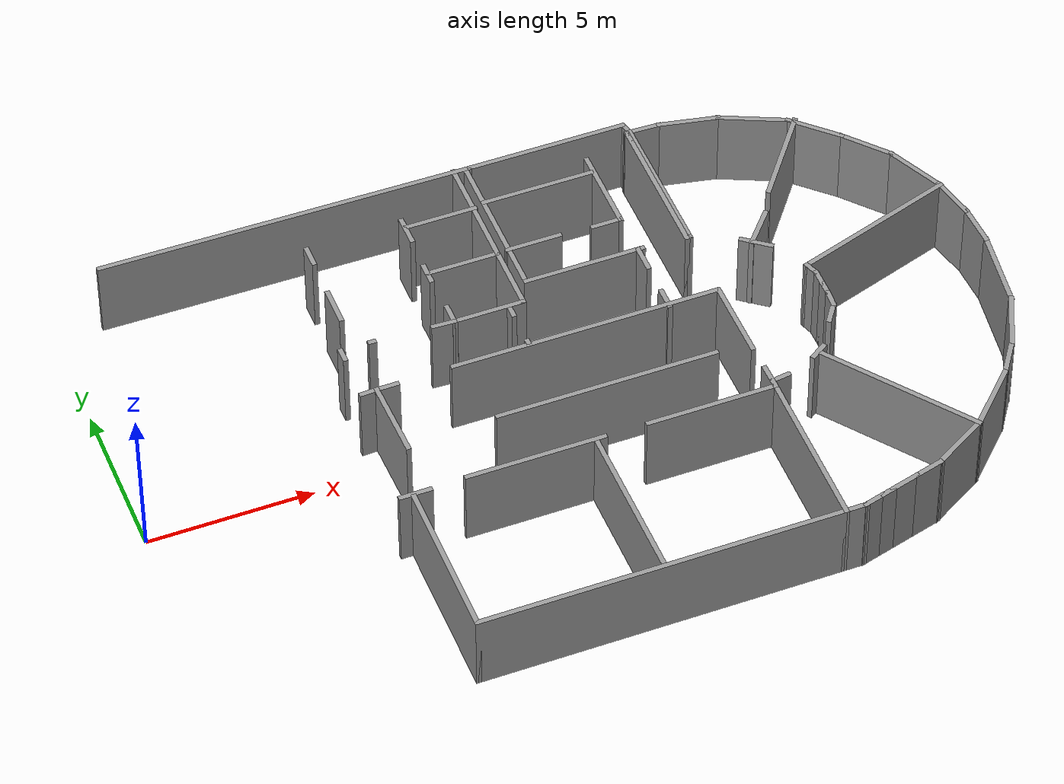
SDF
<sdf version="1.7">
 <model name="5OG_waende">
  <pose>-0.119199 0.062198 0 0 -0 0</pose>
  <link name="Wall_10">
   <collision name="Wall_10_Collision">
    <geometry><box><size>2.25 0.15 2.5</size></box></geometry>
    <pose>0 0 1.25 0 -0 0</pose>
   </collision>
   <visual name="Wall_10_Visual">
    <pose>0 0 1.25 0 -0 0</pose>
    <geometry><box><size>2.25 0.15 2.5</size></box></geometry>
    <material>
     <script><uri>file://media/materials/scripts/gazebo.material</uri><name>Gazebo/Grey</name></script>
     <ambient>1 1 1 1</ambient>
    </material>
    <meta><layer>0</layer></meta>
   </visual>
   <pose>23.3119 -5.75931 0 0 -0 0.785398</pose>
  </link>
  <link name="Wall_11">
   <collision name="Wall_11_Collision">
    <geometry><box><size>1.33085 0.15 2.5</size></box></geometry>
    <pose>0 0 1.25 0 -0 0</pose>
   </collision>
   <visual name="Wall_11_Visual">
    <pose>0 0 1.25 0 -0 0</pose>
    <geometry><box><size>1.33085 0.15 2.5</size></box></geometry>
    <material>
     <script><uri>file://media/materials/scripts/gazebo.material</uri><name>Gazebo/Grey</name></script>
     <ambient>1 1 1 1</ambient>
    </material>
    <meta><layer>0</layer></meta>
   </visual>
   <pose>24.3861 -4.52841 0 0 -0 0.974205</pose>
  </link>
  <link name="Wall_12">
   <collision name="Wall_12_Collision">
    <geometry><box><size>1.84074 0.15 2.5</size></box></geometry>
    <pose>0 0 1.25 0 -0 0</pose>
   </collision>
   <visual name="Wall_12_Visual">
    <pose>0 0 1.25 0 -0 0</pose>
    <geometry><box><size>1.84074 0.15 2.5</size></box></geometry>
    <material>
     <script><uri>file://media/materials/scripts/gazebo.material</uri><name>Gazebo/Grey</name></script>
     <ambient>1 1 1 1</ambient>
    </material>
    <meta><layer>0</layer></meta>
   </visual>
   <pose>25.0636 -3.26858 0 0 -0 1.14938</pose>
  </link>
  <link name="Wall_13">
   <collision name="Wall_13_Collision">
    <geometry><box><size>2.5652 0.15 2.5</size></box></geometry>
    <pose>0 0 1.25 0 -0 0</pose>
   </collision>
   <visual name="Wall_13_Visual">
    <pose>0 0 1.25 0 -0 0</pose>
    <geometry><box><size>2.5652 0.15 2.5</size></box></geometry>
    <material>
     <script><uri>file://media/materials/scripts/gazebo.material</uri><name>Gazebo/Grey</name></script>
     <ambient>1 1 1 1</ambient>
    </material>
    <meta><layer>0</layer></meta>
   </visual>
   <pose>25.569 -1.30016 0 0 -0 1.43824</pose>
  </link>
  <link name="Wall_14">
   <collision name="Wall_14_Collision">
    <geometry><box><size>1.37477 0.15 2.5</size></box></geometry>
    <pose>0 0 1.25 0 -0 0</pose>
   </collision>
   <visual name="Wall_14_Visual">
    <pose>0 0 1.25 0 -0 0</pose>
    <geometry><box><size>1.37477 0.15 2.5</size></box></geometry>
    <material>
     <script><uri>file://media/materials/scripts/gazebo.material</uri><name>Gazebo/Grey</name></script>
     <ambient>1 1 1 1</ambient>
    </material>
    <meta><layer>0</layer></meta>
   </visual>
   <pose>25.702 0.508653 0 0 -0 1.61425</pose>
  </link>
  <link name="Wall_15">
   <collision name="Wall_15_Collision">
    <geometry><box><size>1.48585 0.15 2.5</size></box></geometry>
    <pose>0 0 1.25 0 -0 0</pose>
   </collision>
   <visual name="Wall_15_Visual">
    <pose>0 0 1.25 0 -0 0</pose>
    <geometry><box><size>1.48585 0.15 2.5</size></box></geometry>
    <material>
     <script><uri>file://media/materials/scripts/gazebo.material</uri><name>Gazebo/Grey</name></script>
     <ambient>1 1 1 1</ambient>
    </material>
    <meta><layer>0</layer></meta>
   </visual>
   <pose>25.5291 1.77216 0 0 -0 1.79163</pose>
  </link>
  <link name="Wall_159">
   <collision name="Wall_159_Collision">
    <geometry><box><size>5 0.15 2.5</size></box></geometry>
    <pose>0 0 1.25 0 -0 0</pose>
   </collision>
   <visual name="Wall_159_Visual">
    <pose>0 0 1.25 0 -0 0</pose>
    <geometry><box><size>5 0.15 2.5</size></box></geometry>
    <material>
     <script><uri>file://media/materials/scripts/gazebo.material</uri><name>Gazebo/Grey</name></script>
     <ambient>1 1 1 1</ambient>
    </material>
    <meta><layer>0</layer></meta>
   </visual>
   <pose>6.95757 -5.68764 0 0 -0 1.5708</pose>
  </link>
  <link name="Wall_161">
   <collision name="Wall_161_Collision">
    <geometry><box><size>1 0.15 2.5</size></box></geometry>
    <pose>0 0 1.25 0 -0 0</pose>
   </collision>
   <visual name="Wall_161_Visual">
    <pose>0 0 1.25 0 -0 0</pose>
    <geometry><box><size>1 0.15 2.5</size></box></geometry>
    <material>
     <script><uri>file://media/materials/scripts/gazebo.material</uri><name>Gazebo/Grey</name></script>
     <ambient>1 1 1 1</ambient>
    </material>
    <meta><layer>0</layer></meta>
   </visual>
   <pose>7.02951 -3.18077 0 0 -0 0</pose>
  </link>
  <link name="Wall_169">
   <collision name="Wall_169_Collision">
    <geometry><box><size>4.25 0.15 2.5</size></box></geometry>
    <pose>0 0 1.25 0 -0 0</pose>
   </collision>
   <visual name="Wall_169_Visual">
    <pose>0 0 1.25 0 -0 0</pose>
    <geometry><box><size>4.25 0.15 2.5</size></box></geometry>
    <material>
     <script><uri>file://media/materials/scripts/gazebo.material</uri><name>Gazebo/Grey</name></script>
     <ambient>1 1 1 1</ambient>
    </material>
    <meta><layer>0</layer></meta>
   </visual>
   <pose>10.6164 -3.13514 0 0 -0 0</pose>
  </link>
  <link name="Wall_17">
   <collision name="Wall_17_Collision">
    <geometry><box><size>1.97402 0.15 2.5</size></box></geometry>
    <pose>0 0 1.25 0 -0 0</pose>
   </collision>
   <visual name="Wall_17_Visual">
    <pose>0 0 1.25 0 -0 0</pose>
    <geometry><box><size>1.97402 0.15 2.5</size></box></geometry>
    <material>
     <script><uri>file://media/materials/scripts/gazebo.material</uri><name>Gazebo/Grey</name></script>
     <ambient>1 1 1 1</ambient>
    </material>
    <meta><layer>0</layer></meta>
   </visual>
   <pose>24.9959 3.24973 0 0 -0 2.00893</pose>
  </link>
  <link name="Wall_172">
   <collision name="Wall_172_Collision">
    <geometry><box><size>5.06245 0.15 2.5</size></box></geometry>
    <pose>0 0 1.25 0 -0 0</pose>
   </collision>
   <visual name="Wall_172_Visual">
    <pose>0 0 1.25 0 -0 0</pose>
    <geometry><box><size>5.06245 0.15 2.5</size></box></geometry>
    <material>
     <script><uri>file://media/materials/scripts/gazebo.material</uri><name>Gazebo/Grey</name></script>
     <ambient>1 1 1 1</ambient>
    </material>
    <meta><layer>0</layer></meta>
   </visual>
   <pose>12.4143 -5.60656 0 0 -0 1.57699</pose>
  </link>
  <link name="Wall_174">
   <collision name="Wall_174_Collision">
    <geometry><box><size>4 0.15 2.5</size></box></geometry>
    <pose>0 0 1.25 0 -0 0</pose>
   </collision>
   <visual name="Wall_174_Visual">
    <pose>0 0 1.25 0 -0 0</pose>
    <geometry><box><size>4 0.15 2.5</size></box></geometry>
    <material>
     <script><uri>file://media/materials/scripts/gazebo.material</uri><name>Gazebo/Grey</name></script>
     <ambient>1 1 1 1</ambient>
    </material>
    <meta><layer>0</layer></meta>
   </visual>
   <pose>15.9058 -3.13514 0 0 -0 0</pose>
  </link>
  <link name="Wall_175">
   <collision name="Wall_175_Collision">
    <geometry><box><size>5.12755 0.15 2.5</size></box></geometry>
    <pose>0 0 1.25 0 -0 0</pose>
   </collision>
   <visual name="Wall_175_Visual">
    <pose>0 0 1.25 0 -0 0</pose>
    <geometry><box><size>5.12755 0.15 2.5</size></box></geometry>
    <material>
     <script><uri>file://media/materials/scripts/gazebo.material</uri><name>Gazebo/Grey</name></script>
     <ambient>1 1 1 1</ambient>
    </material>
    <meta><layer>0</layer></meta>
   </visual>
   <pose>17.8192 -5.62389 0 0 -0 -1.57546</pose>
  </link>
  <link name="Wall_177">
   <collision name="Wall_177_Collision">
    <geometry><box><size>0.885695 0.15 2.5</size></box></geometry>
    <pose>0 0 1.25 0 -0 0</pose>
   </collision>
   <visual name="Wall_177_Visual">
    <pose>0 0 1.25 0 -0 0</pose>
    <geometry><box><size>0.885695 0.15 2.5</size></box></geometry>
    <material>
     <script><uri>file://media/materials/scripts/gazebo.material</uri><name>Gazebo/Grey</name></script>
     <ambient>1 1 1 1</ambient>
    </material>
    <meta><layer>0</layer></meta>
   </visual>
   <pose>17.8268 -2.76732 0 0 -0 -1.56005</pose>
  </link>
  <link name="Wall_18">
   <collision name="Wall_18_Collision">
    <geometry><box><size>1.75604 0.15 2.5</size></box></geometry>
    <pose>0 0 1.25 0 -0 0</pose>
   </collision>
   <visual name="Wall_18_Visual">
    <pose>0 0 1.25 0 -0 0</pose>
    <geometry><box><size>1.75604 0.15 2.5</size></box></geometry>
    <material>
     <script><uri>file://media/materials/scripts/gazebo.material</uri><name>Gazebo/Grey</name></script>
     <ambient>1 1 1 1</ambient>
    </material>
    <meta><layer>0</layer></meta>
   </visual>
   <pose>24.083 4.68243 0 0 -0 2.28489</pose>
  </link>
  <link name="Wall_181">
   <collision name="Wall_181_Collision">
    <geometry><box><size>0.643773 0.15 2.5</size></box></geometry>
    <pose>0 0 1.25 0 -0 0</pose>
   </collision>
   <visual name="Wall_181_Visual">
    <pose>0 0 1.25 0 -0 0</pose>
    <geometry><box><size>0.643773 0.15 2.5</size></box></geometry>
    <material>
     <script><uri>file://media/materials/scripts/gazebo.material</uri><name>Gazebo/Grey</name></script>
     <ambient>1 1 1 1</ambient>
    </material>
    <meta><layer>0</layer></meta>
   </visual>
   <pose>18.094 -2.89543 0 0 -0 -3.00727</pose>
  </link>
  <link name="Wall_184">
   <collision name="Wall_184_Collision">
    <geometry><box><size>0.656191 0.15 2.5</size></box></geometry>
    <pose>0 0 1.25 0 -0 0</pose>
   </collision>
   <visual name="Wall_184_Visual">
    <pose>0 0 1.25 0 -0 0</pose>
    <geometry><box><size>0.656191 0.15 2.5</size></box></geometry>
    <material>
     <script><uri>file://media/materials/scripts/gazebo.material</uri><name>Gazebo/Grey</name></script>
     <ambient>1 1 1 1</ambient>
    </material>
    <meta><layer>0</layer></meta>
   </visual>
   <pose>19.4892 -2.36643 0 0 -0 0.580756</pose>
  </link>
  <link name="Wall_186">
   <collision name="Wall_186_Collision">
    <geometry><box><size>6.75 0.15 2.5</size></box></geometry>
    <pose>0 0 1.25 0 -0 0</pose>
   </collision>
   <visual name="Wall_186_Visual">
    <pose>0 0 1.25 0 -0 0</pose>
    <geometry><box><size>6.75 0.15 2.5</size></box></geometry>
    <material>
     <script><uri>file://media/materials/scripts/gazebo.material</uri><name>Gazebo/Grey</name></script>
     <ambient>1 1 1 1</ambient>
    </material>
    <meta><layer>0</layer></meta>
   </visual>
   <pose>13.4788 -1.34149 0 0 -0 0</pose>
  </link>
  <link name="Wall_188">
   <collision name="Wall_188_Collision">
    <geometry><box><size>2.60999 0.15 2.5</size></box></geometry>
    <pose>0 0 1.25 0 -0 0</pose>
   </collision>
   <visual name="Wall_188_Visual">
    <pose>0 0 1.25 0 -0 0</pose>
    <geometry><box><size>2.60999 0.15 2.5</size></box></geometry>
    <material>
     <script><uri>file://media/materials/scripts/gazebo.material</uri><name>Gazebo/Grey</name></script>
     <ambient>1 1 1 1</ambient>
    </material>
    <meta><layer>0</layer></meta>
   </visual>
   <pose>17.7898 -0.349615 0 0 -0 1.57617</pose>
  </link>
  <link name="Wall_189">
   <collision name="Wall_189_Collision">
    <geometry><box><size>8.25 0.15 2.5</size></box></geometry>
    <pose>0 0 1.25 0 -0 0</pose>
   </collision>
   <visual name="Wall_189_Visual">
    <pose>0 0 1.25 0 -0 0</pose>
    <geometry><box><size>8.25 0.15 2.5</size></box></geometry>
    <material>
     <script><uri>file://media/materials/scripts/gazebo.material</uri><name>Gazebo/Grey</name></script>
     <ambient>1 1 1 1</ambient>
    </material>
    <meta><layer>0</layer></meta>
   </visual>
   <pose>13.7332 0.88031 0 0 -0 3.14159</pose>
  </link>
  <link name="Wall_19">
   <collision name="Wall_19_Collision">
    <geometry><box><size>1.83802 0.15 2.5</size></box></geometry>
    <pose>0 0 1.25 0 -0 0</pose>
   </collision>
   <visual name="Wall_19_Visual">
    <pose>0 0 1.25 0 -0 0</pose>
    <geometry><box><size>1.83802 0.15 2.5</size></box></geometry>
    <material>
     <script><uri>file://media/materials/scripts/gazebo.material</uri><name>Gazebo/Grey</name></script>
     <ambient>1 1 1 1</ambient>
    </material>
    <meta><layer>0</layer></meta>
   </visual>
   <pose>22.9503 5.87587 0 0 -0 2.37314</pose>
  </link>
  <link name="Wall_191">
   <collision name="Wall_191_Collision">
    <geometry><box><size>0.75 0.15 2.5</size></box></geometry>
    <pose>0 0 1.25 0 -0 0</pose>
   </collision>
   <visual name="Wall_191_Visual">
    <pose>0 0 1.25 0 -0 0</pose>
    <geometry><box><size>0.75 0.15 2.5</size></box></geometry>
    <material>
     <script><uri>file://media/materials/scripts/gazebo.material</uri><name>Gazebo/Grey</name></script>
     <ambient>1 1 1 1</ambient>
    </material>
    <meta><layer>0</layer></meta>
   </visual>
   <pose>7.68034 0.842025 0 0 -0 0</pose>
  </link>
  <link name="Wall_197">
   <collision name="Wall_197_Collision">
    <geometry><box><size>0.75 0.15 2.5</size></box></geometry>
    <pose>0 0 1.25 0 -0 0</pose>
   </collision>
   <visual name="Wall_197_Visual">
    <pose>0 0 1.25 0 -0 0</pose>
    <geometry><box><size>0.75 0.15 2.5</size></box></geometry>
    <material>
     <script><uri>file://media/materials/scripts/gazebo.material</uri><name>Gazebo/Grey</name></script>
     <ambient>1 1 1 1</ambient>
    </material>
    <meta><layer>0</layer></meta>
   </visual>
   <pose>7.39735 6.40508 0 0 -0 -1.5708</pose>
  </link>
  <link name="Wall_199">
   <collision name="Wall_199_Collision">
    <geometry><box><size>1.25 0.15 2.5</size></box></geometry>
    <pose>0 0 1.25 0 -0 0</pose>
   </collision>
   <visual name="Wall_199_Visual">
    <pose>0 0 1.25 0 -0 0</pose>
    <geometry><box><size>1.25 0.15 2.5</size></box></geometry>
    <material>
     <script><uri>file://media/materials/scripts/gazebo.material</uri><name>Gazebo/Grey</name></script>
     <ambient>1 1 1 1</ambient>
    </material>
    <meta><layer>0</layer></meta>
   </visual>
   <pose>7.36928 4.30463 0 0 -0 -1.5708</pose>
  </link>
  <link name="Wall_20">
   <collision name="Wall_20_Collision">
    <geometry><box><size>2.19571 0.15 2.5</size></box></geometry>
    <pose>0 0 1.25 0 -0 0</pose>
   </collision>
   <visual name="Wall_20_Visual">
    <pose>0 0 1.25 0 -0 0</pose>
    <geometry><box><size>2.19571 0.15 2.5</size></box></geometry>
    <material>
     <script><uri>file://media/materials/scripts/gazebo.material</uri><name>Gazebo/Grey</name></script>
     <ambient>1 1 1 1</ambient>
    </material>
    <meta><layer>0</layer></meta>
   </visual>
   <pose>21.4129 6.88726 0 0 -0 2.71333</pose>
  </link>
  <link name="Wall_203">
   <collision name="Wall_203_Collision">
    <geometry><box><size>5.75 0.15 2.5</size></box></geometry>
    <pose>0 0 1.25 0 -0 0</pose>
   </collision>
   <visual name="Wall_203_Visual">
    <pose>0 0 1.25 0 -0 0</pose>
    <geometry><box><size>5.75 0.15 2.5</size></box></geometry>
    <material>
     <script><uri>file://media/materials/scripts/gazebo.material</uri><name>Gazebo/Grey</name></script>
     <ambient>1 1 1 1</ambient>
    </material>
    <meta><layer>0</layer></meta>
   </visual>
   <pose>12.4349 5.29292 0 0 -0 -1.5708</pose>
  </link>
  <link name="Wall_204">
   <collision name="Wall_204_Collision">
    <geometry><box><size>2.25 0.15 2.5</size></box></geometry>
    <pose>0 0 1.25 0 -0 0</pose>
   </collision>
   <visual name="Wall_204_Visual">
    <pose>0 0 1.25 0 -0 0</pose>
    <geometry><box><size>2.25 0.15 2.5</size></box></geometry>
    <material>
     <script><uri>file://media/materials/scripts/gazebo.material</uri><name>Gazebo/Grey</name></script>
     <ambient>1 1 1 1</ambient>
    </material>
    <meta><layer>0</layer></meta>
   </visual>
   <pose>11.3849 2.49292 0 0 -0 3.14159</pose>
  </link>
  <link name="Wall_205">
   <collision name="Wall_205_Collision">
    <geometry><box><size>0.75 0.15 2.5</size></box></geometry>
    <pose>0 0 1.25 0 -0 0</pose>
   </collision>
   <visual name="Wall_205_Visual">
    <pose>0 0 1.25 0 -0 0</pose>
    <geometry><box><size>0.75 0.15 2.5</size></box></geometry>
    <material>
     <script><uri>file://media/materials/scripts/gazebo.material</uri><name>Gazebo/Grey</name></script>
     <ambient>1 1 1 1</ambient>
    </material>
    <meta><layer>0</layer></meta>
   </visual>
   <pose>10.3349 2.79292 0 0 -0 1.5708</pose>
  </link>
  <link name="Wall_207">
   <collision name="Wall_207_Collision">
    <geometry><box><size>0.75 0.15 2.5</size></box></geometry>
    <pose>0 0 1.25 0 -0 0</pose>
   </collision>
   <visual name="Wall_207_Visual">
    <pose>0 0 1.25 0 -0 0</pose>
    <geometry><box><size>0.75 0.15 2.5</size></box></geometry>
    <material>
     <script><uri>file://media/materials/scripts/gazebo.material</uri><name>Gazebo/Grey</name></script>
     <ambient>1 1 1 1</ambient>
    </material>
    <meta><layer>0</layer></meta>
   </visual>
   <pose>10.2837 4.53011 0 0 -0 1.5708</pose>
  </link>
  <link name="Wall_209">
   <collision name="Wall_209_Collision">
    <geometry><box><size>2.25 0.15 2.5</size></box></geometry>
    <pose>0 0 1.25 0 -0 0</pose>
   </collision>
   <visual name="Wall_209_Visual">
    <pose>0 0 1.25 0 -0 0</pose>
    <geometry><box><size>2.25 0.15 2.5</size></box></geometry>
    <material>
     <script><uri>file://media/materials/scripts/gazebo.material</uri><name>Gazebo/Grey</name></script>
     <ambient>1 1 1 1</ambient>
    </material>
    <meta><layer>0</layer></meta>
   </visual>
   <pose>11.3569 4.53081 0 0 -0 0</pose>
  </link>
  <link name="Wall_21">
   <collision name="Wall_21_Collision">
    <geometry><box><size>1.92728 0.15 2.5</size></box></geometry>
    <pose>0 0 1.25 0 -0 0</pose>
   </collision>
   <visual name="Wall_21_Visual">
    <pose>0 0 1.25 0 -0 0</pose>
    <geometry><box><size>1.92728 0.15 2.5</size></box></geometry>
    <material>
     <script><uri>file://media/materials/scripts/gazebo.material</uri><name>Gazebo/Grey</name></script>
     <ambient>1 1 1 1</ambient>
    </material>
    <meta><layer>0</layer></meta>
   </visual>
   <pose>19.6127 7.49409 0 0 -0 2.93527</pose>
  </link>
  <link name="Wall_211">
   <collision name="Wall_211_Collision">
    <geometry><box><size>1 0.15 2.5</size></box></geometry>
    <pose>0 0 1.25 0 -0 0</pose>
   </collision>
   <visual name="Wall_211_Visual">
    <pose>0 0 1.25 0 -0 0</pose>
    <geometry><box><size>1 0.15 2.5</size></box></geometry>
    <material>
     <script><uri>file://media/materials/scripts/gazebo.material</uri><name>Gazebo/Grey</name></script>
     <ambient>1 1 1 1</ambient>
    </material>
    <meta><layer>0</layer></meta>
   </visual>
   <pose>10.33 6.34947 0 0 -0 -1.5708</pose>
  </link>
  <link name="Wall_213">
   <collision name="Wall_213_Collision">
    <geometry><box><size>2.25 0.15 2.5</size></box></geometry>
    <pose>0 0 1.25 0 -0 0</pose>
   </collision>
   <visual name="Wall_213_Visual">
    <pose>0 0 1.25 0 -0 0</pose>
    <geometry><box><size>2.25 0.15 2.5</size></box></geometry>
    <material>
     <script><uri>file://media/materials/scripts/gazebo.material</uri><name>Gazebo/Grey</name></script>
     <ambient>1 1 1 1</ambient>
    </material>
    <meta><layer>0</layer></meta>
   </visual>
   <pose>11.4263 6.47378 0 0 -0 0</pose>
  </link>
  <link name="Wall_215">
   <collision name="Wall_215_Collision">
    <geometry><box><size>0.779929 0.15 2.5</size></box></geometry>
    <pose>0 0 1.25 0 -0 0</pose>
   </collision>
   <visual name="Wall_215_Visual">
    <pose>0 0 1.25 0 -0 0</pose>
    <geometry><box><size>0.779929 0.15 2.5</size></box></geometry>
    <material>
     <script><uri>file://media/materials/scripts/gazebo.material</uri><name>Gazebo/Grey</name></script>
     <ambient>1 1 1 1</ambient>
    </material>
    <meta><layer>0</layer></meta>
   </visual>
   <pose>10.0202 2.50568 0 0 -0 -0.040529</pose>
  </link>
  <link name="Wall_217">
   <collision name="Wall_217_Collision">
    <geometry><box><size>0.75 0.15 2.5</size></box></geometry>
    <pose>0 0 1.25 0 -0 0</pose>
   </collision>
   <visual name="Wall_217_Visual">
    <pose>0 0 1.25 0 -0 0</pose>
    <geometry><box><size>0.75 0.15 2.5</size></box></geometry>
    <material>
     <script><uri>file://media/materials/scripts/gazebo.material</uri><name>Gazebo/Grey</name></script>
     <ambient>1 1 1 1</ambient>
    </material>
    <meta><layer>0</layer></meta>
   </visual>
   <pose>16.2457 1.11391 0 0 -0 -1.5708</pose>
  </link>
  <link name="Wall_219">
   <collision name="Wall_219_Collision">
    <geometry><box><size>0.915267 0.15 2.5</size></box></geometry>
    <pose>0 0 1.25 0 -0 0</pose>
   </collision>
   <visual name="Wall_219_Visual">
    <pose>0 0 1.25 0 -0 0</pose>
    <geometry><box><size>0.915267 0.15 2.5</size></box></geometry>
    <material>
     <script><uri>file://media/materials/scripts/gazebo.material</uri><name>Gazebo/Grey</name></script>
     <ambient>1 1 1 1</ambient>
    </material>
    <meta><layer>0</layer></meta>
   </visual>
   <pose>16.2544 2.81391 0 0 -0 1.5708</pose>
  </link>
  <link name="Wall_22">
   <collision name="Wall_22_Collision">
    <geometry><box><size>1.1622 0.15 2.5</size></box></geometry>
    <pose>0 0 1.25 0 -0 0</pose>
   </collision>
   <visual name="Wall_22_Visual">
    <pose>0 0 1.25 0 -0 0</pose>
    <geometry><box><size>1.1622 0.15 2.5</size></box></geometry>
    <material>
     <script><uri>file://media/materials/scripts/gazebo.material</uri><name>Gazebo/Grey</name></script>
     <ambient>1 1 1 1</ambient>
    </material>
    <meta><layer>0</layer></meta>
   </visual>
   <pose>18.2372 7.69637 0 0 -0 3.10161</pose>
  </link>
  <link name="Wall_221">
   <collision name="Wall_221_Collision">
    <geometry><box><size>0.5 0.15 2.5</size></box></geometry>
    <pose>0 0 1.25 0 -0 0</pose>
   </collision>
   <visual name="Wall_221_Visual">
    <pose>0 0 1.25 0 -0 0</pose>
    <geometry><box><size>0.5 0.15 2.5</size></box></geometry>
    <material>
     <script><uri>file://media/materials/scripts/gazebo.material</uri><name>Gazebo/Grey</name></script>
     <ambient>1 1 1 1</ambient>
    </material>
    <meta><layer>0</layer></meta>
   </visual>
   <pose>11.9849 2.28239 0 0 -0 -1.5708</pose>
  </link>
  <link name="Wall_223">
   <collision name="Wall_223_Collision">
    <geometry><box><size>0.25 0.15 2.5</size></box></geometry>
    <pose>0 0 1.25 0 -0 0</pose>
   </collision>
   <visual name="Wall_223_Visual">
    <pose>0 0 1.25 0 -0 0</pose>
    <geometry><box><size>0.25 0.15 2.5</size></box></geometry>
    <material>
     <script><uri>file://media/materials/scripts/gazebo.material</uri><name>Gazebo/Grey</name></script>
     <ambient>1 1 1 1</ambient>
    </material>
    <meta><layer>0</layer></meta>
   </visual>
   <pose>11.9849 0.972606 0 0 -0 -1.5708</pose>
  </link>
  <link name="Wall_25">
   <collision name="Wall_25_Collision">
    <geometry><box><size>4.75 0.15 2.5</size></box></geometry>
    <pose>0 0 1.25 0 -0 0</pose>
   </collision>
   <visual name="Wall_25_Visual">
    <pose>0 0 1.25 0 -0 0</pose>
    <geometry><box><size>4.75 0.15 2.5</size></box></geometry>
    <material>
     <script><uri>file://media/materials/scripts/gazebo.material</uri><name>Gazebo/Grey</name></script>
     <ambient>1 1 1 1</ambient>
    </material>
    <meta><layer>0</layer></meta>
   </visual>
   <pose>17.7315 5.4166 0 0 -0 -1.5708</pose>
  </link>
  <link name="Wall_26">
   <collision name="Wall_26_Collision">
    <geometry><box><size>0.25 0.15 2.5</size></box></geometry>
    <pose>0 0 1.25 0 -0 0</pose>
   </collision>
   <visual name="Wall_26_Visual">
    <pose>0 0 1.25 0 -0 0</pose>
    <geometry><box><size>0.25 0.15 2.5</size></box></geometry>
    <material>
     <script><uri>file://media/materials/scripts/gazebo.material</uri><name>Gazebo/Grey</name></script>
     <ambient>1 1 1 1</ambient>
    </material>
    <meta><layer>0</layer></meta>
   </visual>
   <pose>17.7815 3.1166 0 0 -0 0</pose>
  </link>
  <link name="Wall_27">
   <collision name="Wall_27_Collision">
    <geometry><box><size>4.75 0.15 2.5</size></box></geometry>
    <pose>0 0 1.25 0 -0 0</pose>
   </collision>
   <visual name="Wall_27_Visual">
    <pose>0 0 1.25 0 -0 0</pose>
    <geometry><box><size>4.75 0.15 2.5</size></box></geometry>
    <material>
     <script><uri>file://media/materials/scripts/gazebo.material</uri><name>Gazebo/Grey</name></script>
     <ambient>1 1 1 1</ambient>
    </material>
    <meta><layer>0</layer></meta>
   </visual>
   <pose>17.8315 5.4166 0 0 -0 1.5708</pose>
  </link>
  <link name="Wall_29">
   <collision name="Wall_29_Collision">
    <geometry><box><size>0.5 0.15 2.5</size></box></geometry>
    <pose>0 0 1.25 0 -0 0</pose>
   </collision>
   <visual name="Wall_29_Visual">
    <pose>0 0 1.25 0 -0 0</pose>
    <geometry><box><size>0.5 0.15 2.5</size></box></geometry>
    <material>
     <script><uri>file://media/materials/scripts/gazebo.material</uri><name>Gazebo/Grey</name></script>
     <ambient>1 1 1 1</ambient>
    </material>
    <meta><layer>0</layer></meta>
   </visual>
   <pose>17.7862 7.88563 0 0 -0 1.8326</pose>
  </link>
  <link name="Wall_3">
   <collision name="Wall_3_Collision">
    <geometry><box><size>11 0.15 2.5</size></box></geometry>
    <pose>0 0 1.25 0 -0 0</pose>
   </collision>
   <visual name="Wall_3_Visual">
    <pose>0 0 1.25 0 -0 0</pose>
    <geometry><box><size>11 0.15 2.5</size></box></geometry>
    <material>
     <script><uri>file://media/materials/scripts/gazebo.material</uri><name>Gazebo/Grey</name></script>
     <ambient>1 1 1 1</ambient>
    </material>
    <meta><layer>0</layer></meta>
   </visual>
   <pose>12.3826 -8.11264 0 0 -0 0</pose>
  </link>
  <link name="Wall_30">
   <collision name="Wall_30_Collision">
    <geometry><box><size>5 0.15 2.5</size></box></geometry>
    <pose>0 0 1.25 0 -0 0</pose>
   </collision>
   <visual name="Wall_30_Visual">
    <pose>0 0 1.25 0 -0 0</pose>
    <geometry><box><size>5 0.15 2.5</size></box></geometry>
    <material>
     <script><uri>file://media/materials/scripts/gazebo.material</uri><name>Gazebo/Grey</name></script>
     <ambient>1 1 1 1</ambient>
    </material>
    <meta><layer>0</layer></meta>
   </visual>
   <pose>15.3159 8.05467 0 0 -0 3.14159</pose>
  </link>
  <link name="Wall_31">
   <collision name="Wall_31_Collision">
    <geometry><box><size>0.25 0.15 2.5</size></box></geometry>
    <pose>0 0 1.25 0 -0 0</pose>
   </collision>
   <visual name="Wall_31_Visual">
    <pose>0 0 1.25 0 -0 0</pose>
    <geometry><box><size>0.25 0.15 2.5</size></box></geometry>
    <material>
     <script><uri>file://media/materials/scripts/gazebo.material</uri><name>Gazebo/Grey</name></script>
     <ambient>1 1 1 1</ambient>
    </material>
    <meta><layer>0</layer></meta>
   </visual>
   <pose>12.8409 8.05467 0 0 -0 3.14159</pose>
  </link>
  <link name="Wall_32">
   <collision name="Wall_32_Collision">
    <geometry><box><size>5 0.15 2.5</size></box></geometry>
    <pose>0 0 1.25 0 -0 0</pose>
   </collision>
   <visual name="Wall_32_Visual">
    <pose>0 0 1.25 0 -0 0</pose>
    <geometry><box><size>5 0.15 2.5</size></box></geometry>
    <material>
     <script><uri>file://media/materials/scripts/gazebo.material</uri><name>Gazebo/Grey</name></script>
     <ambient>1 1 1 1</ambient>
    </material>
    <meta><layer>0</layer></meta>
   </visual>
   <pose>12.7909 5.62967 0 0 -0 -1.5708</pose>
  </link>
  <link name="Wall_33">
   <collision name="Wall_33_Collision">
    <geometry><box><size>3.75 0.15 2.5</size></box></geometry>
    <pose>0 0 1.25 0 -0 0</pose>
   </collision>
   <visual name="Wall_33_Visual">
    <pose>0 0 1.25 0 -0 0</pose>
    <geometry><box><size>3.75 0.15 2.5</size></box></geometry>
    <material>
     <script><uri>file://media/materials/scripts/gazebo.material</uri><name>Gazebo/Grey</name></script>
     <ambient>1 1 1 1</ambient>
    </material>
    <meta><layer>0</layer></meta>
   </visual>
   <pose>14.5909 3.20467 0 0 -0 0</pose>
  </link>
  <link name="Wall_35">
   <collision name="Wall_35_Collision">
    <geometry><box><size>2.75032 0.15 2.5</size></box></geometry>
    <pose>0 0 1.25 0 -0 0</pose>
   </collision>
   <visual name="Wall_35_Visual">
    <pose>0 0 1.25 0 -0 0</pose>
    <geometry><box><size>2.75032 0.15 2.5</size></box></geometry>
    <material>
     <script><uri>file://media/materials/scripts/gazebo.material</uri><name>Gazebo/Grey</name></script>
     <ambient>1 1 1 1</ambient>
    </material>
    <meta><layer>0</layer></meta>
   </visual>
   <pose>16.2346 5.80976 0 0 -0 -1.5708</pose>
  </link>
  <link name="Wall_38">
   <collision name="Wall_38_Collision">
    <geometry><box><size>1.75 0.15 2.5</size></box></geometry>
    <pose>0 0 1.25 0 -0 0</pose>
   </collision>
   <visual name="Wall_38_Visual">
    <pose>0 0 1.25 0 -0 0</pose>
    <geometry><box><size>1.75 0.15 2.5</size></box></geometry>
    <material>
     <script><uri>file://media/materials/scripts/gazebo.material</uri><name>Gazebo/Grey</name></script>
     <ambient>1 1 1 1</ambient>
    </material>
    <meta><layer>0</layer></meta>
   </visual>
   <pose>13.5555 4.56106 0 0 -0 0</pose>
  </link>
  <link name="Wall_4">
   <collision name="Wall_4_Collision">
    <geometry><box><size>0.75 0.15 2.5</size></box></geometry>
    <pose>0 0 1.25 0 -0 0</pose>
   </collision>
   <visual name="Wall_4_Visual">
    <pose>0 0 1.25 0 -0 0</pose>
    <geometry><box><size>0.75 0.15 2.5</size></box></geometry>
    <material>
     <script><uri>file://media/materials/scripts/gazebo.material</uri><name>Gazebo/Grey</name></script>
     <ambient>1 1 1 1</ambient>
    </material>
    <meta><layer>0</layer></meta>
   </visual>
   <pose>18.1076 -8.11264 0 0 -0 0</pose>
  </link>
  <link name="Wall_40">
   <collision name="Wall_40_Collision">
    <geometry><box><size>1 0.15 2.5</size></box></geometry>
    <pose>0 0 1.25 0 -0 0</pose>
   </collision>
   <visual name="Wall_40_Visual">
    <pose>0 0 1.25 0 -0 0</pose>
    <geometry><box><size>1 0.15 2.5</size></box></geometry>
    <material>
     <script><uri>file://media/materials/scripts/gazebo.material</uri><name>Gazebo/Grey</name></script>
     <ambient>1 1 1 1</ambient>
    </material>
    <meta><layer>0</layer></meta>
   </visual>
   <pose>15.8096 4.50976 0 0 -0 3.14159</pose>
  </link>
  <link name="Wall_42">
   <collision name="Wall_42_Collision">
    <geometry><box><size>3.5 0.15 2.5</size></box></geometry>
    <pose>0 0 1.25 0 -0 0</pose>
   </collision>
   <visual name="Wall_42_Visual">
    <pose>0 0 1.25 0 -0 0</pose>
    <geometry><box><size>3.5 0.15 2.5</size></box></geometry>
    <material>
     <script><uri>file://media/materials/scripts/gazebo.material</uri><name>Gazebo/Grey</name></script>
     <ambient>1 1 1 1</ambient>
    </material>
    <meta><layer>0</layer></meta>
   </visual>
   <pose>14.4709 6.58384 0 0 -0 0</pose>
  </link>
  <link name="Wall_44">
   <collision name="Wall_44_Collision">
    <geometry><box><size>5.1793 0.15 2.5</size></box></geometry>
    <pose>0 0 1.25 0 -0 0</pose>
   </collision>
   <visual name="Wall_44_Visual">
    <pose>0 0 1.25 0 -0 0</pose>
    <geometry><box><size>5.1793 0.15 2.5</size></box></geometry>
    <material>
     <script><uri>file://media/materials/scripts/gazebo.material</uri><name>Gazebo/Grey</name></script>
     <ambient>1 1 1 1</ambient>
    </material>
    <meta><layer>0</layer></meta>
   </visual>
   <pose>21.0607 -4.48999 0 0 -0 2.21426</pose>
  </link>
  <link name="Wall_46">
   <collision name="Wall_46_Collision">
    <geometry><box><size>0.789659 0.15 2.5</size></box></geometry>
    <pose>0 0 1.25 0 -0 0</pose>
   </collision>
   <visual name="Wall_46_Visual">
    <pose>0 0 1.25 0 -0 0</pose>
    <geometry><box><size>0.789659 0.15 2.5</size></box></geometry>
    <material>
     <script><uri>file://media/materials/scripts/gazebo.material</uri><name>Gazebo/Grey</name></script>
     <ambient>1 1 1 1</ambient>
    </material>
    <meta><layer>0</layer></meta>
   </visual>
   <pose>20.4218 -1.12295 0 0 -0 0.965252</pose>
  </link>
  <link name="Wall_47">
   <collision name="Wall_47_Collision">
    <geometry><box><size>0.63715 0.15 2.5</size></box></geometry>
    <pose>0 0 1.25 0 -0 0</pose>
   </collision>
   <visual name="Wall_47_Visual">
    <pose>0 0 1.25 0 -0 0</pose>
    <geometry><box><size>0.63715 0.15 2.5</size></box></geometry>
    <material>
     <script><uri>file://media/materials/scripts/gazebo.material</uri><name>Gazebo/Grey</name></script>
     <ambient>1 1 1 1</ambient>
    </material>
    <meta><layer>0</layer></meta>
   </visual>
   <pose>20.6241 -0.617252 0 0 -0 1.48765</pose>
  </link>
  <link name="Wall_48">
   <collision name="Wall_48_Collision">
    <geometry><box><size>0.5141 0.15 2.5</size></box></geometry>
    <pose>0 0 1.25 0 -0 0</pose>
   </collision>
   <visual name="Wall_48_Visual">
    <pose>0 0 1.25 0 -0 0</pose>
    <geometry><box><size>0.5141 0.15 2.5</size></box></geometry>
    <material>
     <script><uri>file://media/materials/scripts/gazebo.material</uri><name>Gazebo/Grey</name></script>
     <ambient>1 1 1 1</ambient>
    </material>
    <meta><layer>0</layer></meta>
   </visual>
   <pose>20.6443 -0.192469 0 0 -0 1.5708</pose>
  </link>
  <link name="Wall_49">
   <collision name="Wall_49_Collision">
    <geometry><box><size>0.635467 0.15 2.5</size></box></geometry>
    <pose>0 0 1.25 0 -0 0</pose>
   </collision>
   <visual name="Wall_49_Visual">
    <pose>0 0 1.25 0 -0 0</pose>
    <geometry><box><size>0.635467 0.15 2.5</size></box></geometry>
    <material>
     <script><uri>file://media/materials/scripts/gazebo.material</uri><name>Gazebo/Grey</name></script>
     <ambient>1 1 1 1</ambient>
    </material>
    <meta><layer>0</layer></meta>
   </visual>
   <pose>20.6443 0.232315 0 0 -0 1.5708</pose>
  </link>
  <link name="Wall_5">
   <collision name="Wall_5_Collision">
    <geometry><box><size>0.75 0.15 2.5</size></box></geometry>
    <pose>0 0 1.25 0 -0 0</pose>
   </collision>
   <visual name="Wall_5_Visual">
    <pose>0 0 1.25 0 -0 0</pose>
    <geometry><box><size>0.75 0.15 2.5</size></box></geometry>
    <material>
     <script><uri>file://media/materials/scripts/gazebo.material</uri><name>Gazebo/Grey</name></script>
     <ambient>1 1 1 1</ambient>
    </material>
    <meta><layer>0</layer></meta>
   </visual>
   <pose>18.6973 -8.03499 0 0 -0 0.261799</pose>
  </link>
  <link name="Wall_50">
   <collision name="Wall_50_Collision">
    <geometry><box><size>0.533795 0.15 2.5</size></box></geometry>
    <pose>0 0 1.25 0 -0 0</pose>
   </collision>
   <visual name="Wall_50_Visual">
    <pose>0 0 1.25 0 -0 0</pose>
    <geometry><box><size>0.533795 0.15 2.5</size></box></geometry>
    <material>
     <script><uri>file://media/materials/scripts/gazebo.material</uri><name>Gazebo/Grey</name></script>
     <ambient>1 1 1 1</ambient>
    </material>
    <meta><layer>0</layer></meta>
   </visual>
   <pose>20.5836 0.657098 0 0 -0 1.89255</pose>
  </link>
  <link name="Wall_51">
   <collision name="Wall_51_Collision">
    <geometry><box><size>5.28085 0.15 2.5</size></box></geometry>
    <pose>0 0 1.25 0 -0 0</pose>
   </collision>
   <visual name="Wall_51_Visual">
    <pose>0 0 1.25 0 -0 0</pose>
    <geometry><box><size>5.28085 0.15 2.5</size></box></geometry>
    <material>
     <script><uri>file://media/materials/scripts/gazebo.material</uri><name>Gazebo/Grey</name></script>
     <ambient>1 1 1 1</ambient>
    </material>
    <meta><layer>0</layer></meta>
   </visual>
   <pose>22.9705 1.6078 0 0 -0 0.304296</pose>
  </link>
  <link name="Wall_53">
   <collision name="Wall_53_Collision">
    <geometry><box><size>1.03955 0.15 2.5</size></box></geometry>
    <pose>0 0 1.25 0 -0 0</pose>
   </collision>
   <visual name="Wall_53_Visual">
    <pose>0 0 1.25 0 -0 0</pose>
    <geometry><box><size>1.03955 0.15 2.5</size></box></geometry>
    <material>
     <script><uri>file://media/materials/scripts/gazebo.material</uri><name>Gazebo/Grey</name></script>
     <ambient>1 1 1 1</ambient>
    </material>
    <meta><layer>0</layer></meta>
   </visual>
   <pose>19.5245 2.2044 0 0 -0 2.48086</pose>
  </link>
  <link name="Wall_57">
   <collision name="Wall_57_Collision">
    <geometry><box><size>1.40755 0.15 2.5</size></box></geometry>
    <pose>0 0 1.25 0 -0 0</pose>
   </collision>
   <visual name="Wall_57_Visual">
    <pose>0 0 1.25 0 -0 0</pose>
    <geometry><box><size>1.40755 0.15 2.5</size></box></geometry>
    <material>
     <script><uri>file://media/materials/scripts/gazebo.material</uri><name>Gazebo/Grey</name></script>
     <ambient>1 1 1 1</ambient>
    </material>
    <meta><layer>0</layer></meta>
   </visual>
   <pose>19.831 2.73738 0 0 -0 0.854255</pose>
  </link>
  <link name="Wall_59">
   <collision name="Wall_59_Collision">
    <geometry><box><size>3.20321 0.15 2.5</size></box></geometry>
    <pose>0 0 1.25 0 -0 0</pose>
   </collision>
   <visual name="Wall_59_Visual">
    <pose>0 0 1.25 0 -0 0</pose>
    <geometry><box><size>3.20321 0.15 2.5</size></box></geometry>
    <material>
     <script><uri>file://media/materials/scripts/gazebo.material</uri><name>Gazebo/Grey</name></script>
     <ambient>1 1 1 1</ambient>
    </material>
    <meta><layer>0</layer></meta>
   </visual>
   <pose>21.6052 5.18459 0 0 -0 0.913268</pose>
  </link>
  <link name="Wall_6">
   <collision name="Wall_6_Collision">
    <geometry><box><size>0.5 0.15 2.5</size></box></geometry>
    <pose>0 0 1.25 0 -0 0</pose>
   </collision>
   <visual name="Wall_6_Visual">
    <pose>0 0 1.25 0 -0 0</pose>
    <geometry><box><size>0.5 0.15 2.5</size></box></geometry>
    <material>
     <script><uri>file://media/materials/scripts/gazebo.material</uri><name>Gazebo/Grey</name></script>
     <ambient>1 1 1 1</ambient>
    </material>
    <meta><layer>0</layer></meta>
   </visual>
   <pose>19.1562 -7.91205 0 0 -0 0.261799</pose>
  </link>
  <link name="Wall_69">
   <collision name="Wall_69_Collision">
    <geometry><box><size>11.3293 0.15 2.5</size></box></geometry>
    <pose>0 0 1.25 0 -0 0</pose>
   </collision>
   <visual name="Wall_69_Visual">
    <pose>0 0 1.25 0 -0 0</pose>
    <geometry><box><size>11.3293 0.15 2.5</size></box></geometry>
    <material>
     <script><uri>file://media/materials/scripts/gazebo.material</uri><name>Gazebo/Grey</name></script>
     <ambient>1 1 1 1</ambient>
    </material>
    <meta><layer>0</layer></meta>
   </visual>
   <pose>7.20153 8.10952 0 0 -0 -0.009813</pose>
  </link>
  <link name="Wall_7">
   <collision name="Wall_7_Collision">
    <geometry><box><size>1 0.15 2.5</size></box></geometry>
    <pose>0 0 1.25 0 -0 0</pose>
   </collision>
   <visual name="Wall_7_Visual">
    <pose>0 0 1.25 0 -0 0</pose>
    <geometry><box><size>1 0.15 2.5</size></box></geometry>
    <material>
     <script><uri>file://media/materials/scripts/gazebo.material</uri><name>Gazebo/Grey</name></script>
     <ambient>1 1 1 1</ambient>
    </material>
    <meta><layer>0</layer></meta>
   </visual>
   <pose>19.7357 -7.75676 0 0 -0 0.261799</pose>
  </link>
  <link name="Wall_8">
   <collision name="Wall_8_Collision">
    <geometry><box><size>1 0.15 2.5</size></box></geometry>
    <pose>0 0 1.25 0 -0 0</pose>
   </collision>
   <visual name="Wall_8_Visual">
    <pose>0 0 1.25 0 -0 0</pose>
    <geometry><box><size>1 0.15 2.5</size></box></geometry>
    <material>
     <script><uri>file://media/materials/scripts/gazebo.material</uri><name>Gazebo/Grey</name></script>
     <ambient>1 1 1 1</ambient>
    </material>
    <meta><layer>0</layer></meta>
   </visual>
   <pose>20.5568 -7.53677 0 0 -0 0.261799</pose>
  </link>
  <link name="Wall_85">
   <collision name="Wall_85_Collision">
    <geometry><box><size>0.25 0.15 2.5</size></box></geometry>
    <pose>0 0 1.25 0 -0 0</pose>
   </collision>
   <visual name="Wall_85_Visual">
    <pose>0 0 1.25 0 -0 0</pose>
    <geometry><box><size>0.25 0.15 2.5</size></box></geometry>
    <material>
     <script><uri>file://media/materials/scripts/gazebo.material</uri><name>Gazebo/Grey</name></script>
     <ambient>1 1 1 1</ambient>
    </material>
    <meta><layer>0</layer></meta>
   </visual>
   <pose>7.88616 2.60346 0 0 -0 0</pose>
  </link>
  <link name="Wall_87">
   <collision name="Wall_87_Collision">
    <geometry><box><size>0.5 0.15 2.5</size></box></geometry>
    <pose>0 0 1.25 0 -0 0</pose>
   </collision>
   <visual name="Wall_87_Visual">
    <pose>0 0 1.25 0 -0 0</pose>
    <geometry><box><size>0.5 0.15 2.5</size></box></geometry>
    <material>
     <script><uri>file://media/materials/scripts/gazebo.material</uri><name>Gazebo/Grey</name></script>
     <ambient>1 1 1 1</ambient>
    </material>
    <meta><layer>0</layer></meta>
   </visual>
   <pose>6.94308 2.43352 0 0 -0 -1.5708</pose>
  </link>
  <link name="Wall_9">
   <collision name="Wall_9_Collision">
    <geometry><box><size>2 0.15 2.5</size></box></geometry>
    <pose>0 0 1.25 0 -0 0</pose>
   </collision>
   <visual name="Wall_9_Visual">
    <pose>0 0 1.25 0 -0 0</pose>
    <geometry><box><size>2 0.15 2.5</size></box></geometry>
    <material>
     <script><uri>file://media/materials/scripts/gazebo.material</uri><name>Gazebo/Grey</name></script>
     <ambient>1 1 1 1</ambient>
    </material>
    <meta><layer>0</layer></meta>
   </visual>
   <pose>21.7683 -6.96427 0 0 -0 0.523599</pose>
  </link>
  <link name="Wall_97">
   <collision name="Wall_97_Collision">
    <geometry><box><size>2.51174 0.15 2.5</size></box></geometry>
    <pose>0 0 1.25 0 -0 0</pose>
   </collision>
   <visual name="Wall_97_Visual">
    <pose>0 0 1.25 0 -0 0</pose>
    <geometry><box><size>2.51174 0.15 2.5</size></box></geometry>
    <material>
     <script><uri>file://media/materials/scripts/gazebo.material</uri><name>Gazebo/Grey</name></script>
     <ambient>1 1 1 1</ambient>
    </material>
    <meta><layer>0</layer></meta>
   </visual>
   <pose>7.40657 -0.338554 0 0 -0 1.59302</pose>
  </link>
  <link name="Wall_98">
   <collision name="Wall_98_Collision">
    <geometry><box><size>0.605078 0.15 2.5</size></box></geometry>
    <pose>0 0 1.25 0 -0 0</pose>
   </collision>
   <visual name="Wall_98_Visual">
    <pose>0 0 1.25 0 -0 0</pose>
    <geometry><box><size>0.605078 0.15 2.5</size></box></geometry>
    <material>
     <script><uri>file://media/materials/scripts/gazebo.material</uri><name>Gazebo/Grey</name></script>
     <ambient>1 1 1 1</ambient>
    </material>
    <meta><layer>0</layer></meta>
   </visual>
   <pose>7.15297 0.83328 0 0 -0 -3.10315</pose>
  </link>
  <static>1</static>
 </model>
</sdf>
